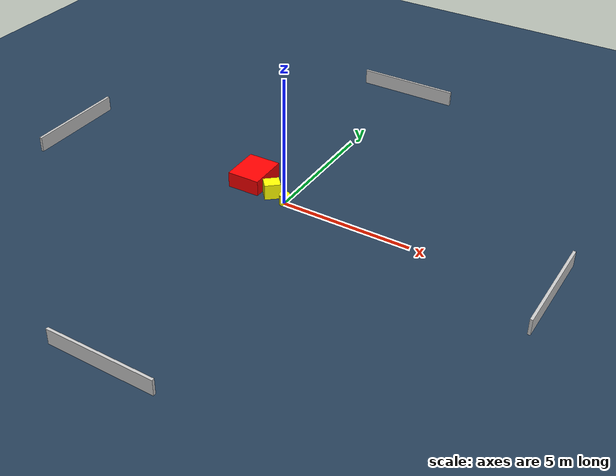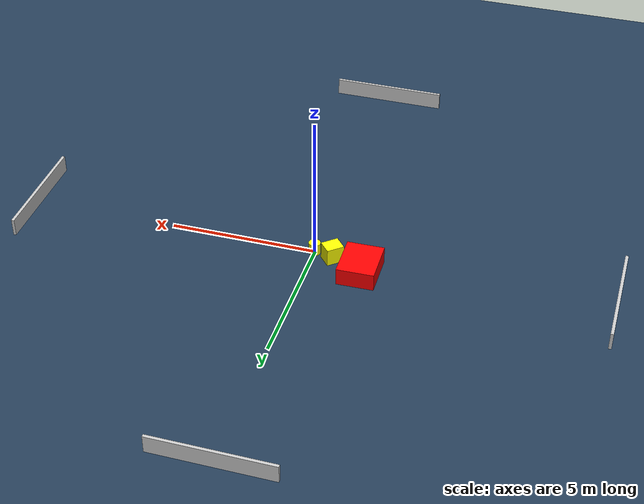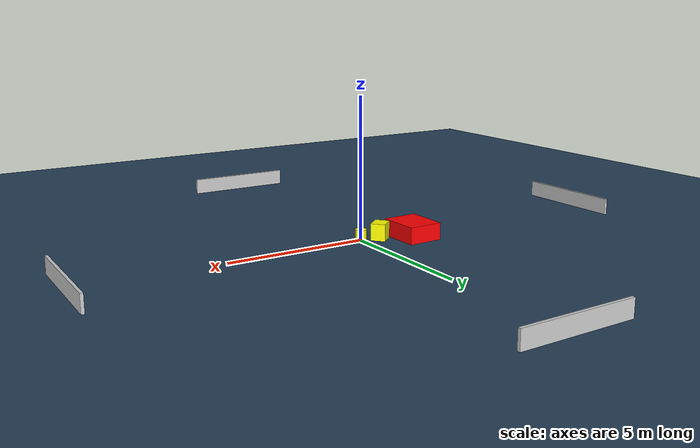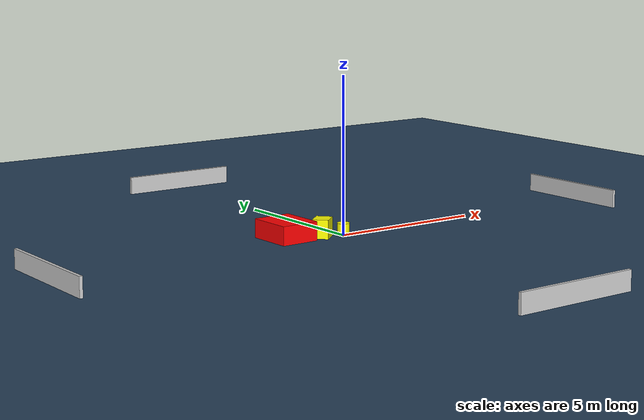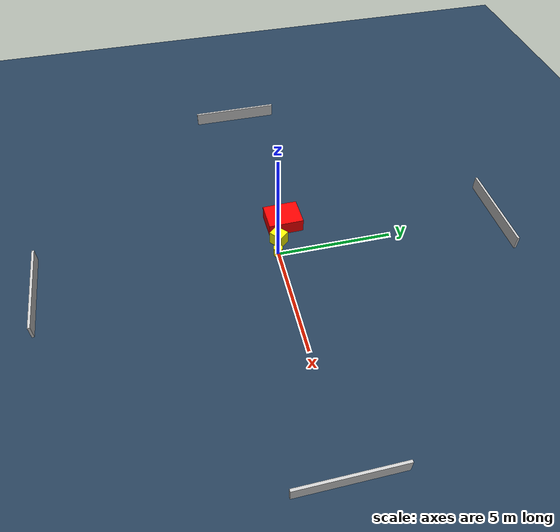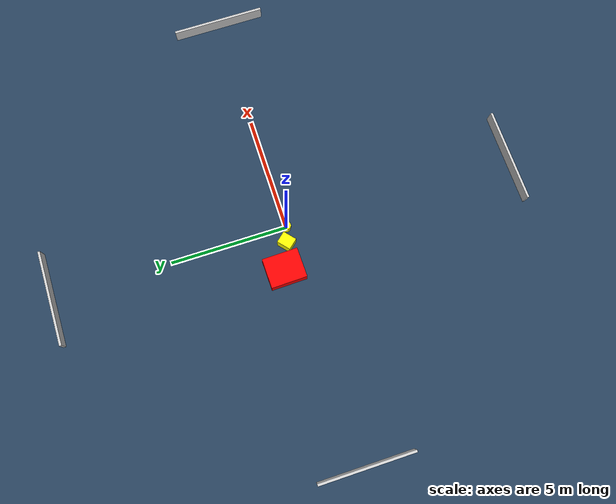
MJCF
<?xml version="1.0" ?>
<mujoco model="generated_environment">
  <option timestep="0.01" integrator="RK4" cone="elliptic"/>
  <default>
    <geom density="1"/>
  </default>
  <asset>
    <texture builtin="gradient" height="3072" name="skybox" rgb1="0.3 0.5 0.7" rgb2="0 0 0" type="skybox" width="512"/>
    <texture builtin="checker" height="300" name="groundplane" rgb1="0.2 0.3 0.4" rgb2="0.1 0.2 0.3" type="2d" width="300"/>
    <material name="groundplane" reflectance="0.2" texrepeat="5 5" texture="groundplane"/>
  </asset>
  <worldbody>
    <light dir="0 0 -1" directional="true" pos="0 0 1.5"/>
    <geom condim="3" friction="0.5 0.005 0.001" material="groundplane" name="floor" pos="0 0 0" size="0 0 0.05" type="plane"/>
    <body name="walls">
      <geom name="wall_1" condim="4" pos="-10.0 0.0 0.3" rgba="0.800000011920929 0.800000011920929 0.800000011920929 1.0" size="0.05 2.0 0.3" type="box"/>
      <geom name="wall_2" condim="4" pos="10.0 0.0 0.3" rgba="0.800000011920929 0.800000011920929 0.800000011920929 1.0" size="0.05 2.0 0.3" type="box"/>
      <geom name="wall_3" condim="4" pos="0.0 -10.0 0.3" rgba="0.800000011920929 0.800000011920929 0.800000011920929 1.0" size="2.0 0.05 0.3" type="box"/>
      <geom name="wall_4" condim="4" pos="0.0 10.0 0.3" rgba="0.800000011920929 0.800000011920929 0.800000011920929 1.0" size="2.0 0.05 0.3" type="box"/>
    </body>
    <body name="robot">
      <joint name="joint_x" type="slide" pos="0 0 0" axis="1 0 0"/>
      <joint name="joint_y" type="slide" pos="0 0 0" axis="0 1 0"/>
      <geom name="robot" type="cylinder" pos="0.0 0.0 0.2" size="0.2 0.2 0.0" mass="5.0" friction="1.0 0.005 0.0001" condim="4" rgba="1.0 1.0 0.0 1.0"/>
    </body>
    <body name="obstacle_1_movable">
      <geom name="obstacle_1_movable" condim="4" pos="-0.6658494992106333 0.19066995617101928 0.3" euler="0 0 131.03661591310984" friction="0.0 0.005 0.001" rgba="1.0 1.0 0.0 1.0" size="0.2541889025011923 0.30000990687970175 0.3" type="box" mass="0.1"/>
      <joint type="free"/>
    </body>
    <body name="obstacle_2_static">
      <geom name="obstacle_2_static" condim="4" pos="-1.7347985551080007 0.6283360179506562 0.3" euler="0 0 1.2150359310388303" friction="0.0 0.005 0.001" rgba="1.0 0.0 0.0 1.0" size="0.6282270093567734 0.7602693844433628 0.3" type="box"/>
    </body>
  </worldbody>
  <actuator>
    <motor name="actuator_x" joint="joint_x" gear="1" ctrlrange="-1 1"/>
    <motor name="actuator_y" joint="joint_y" gear="1" ctrlrange="-1 1"/>
  </actuator>
</mujoco>
